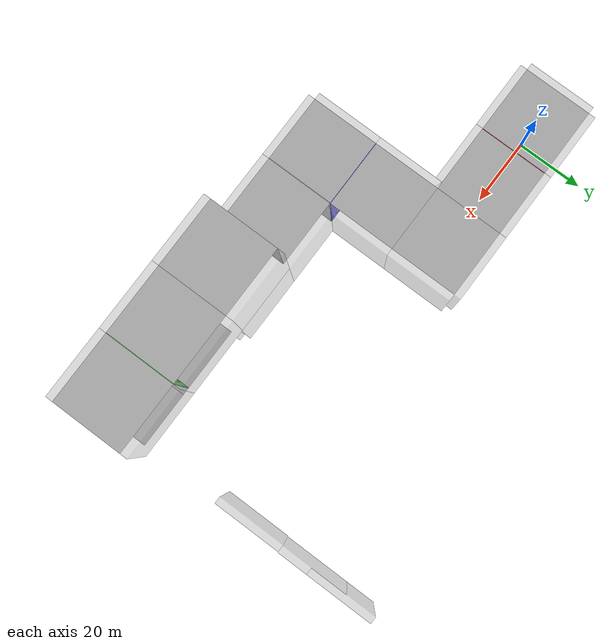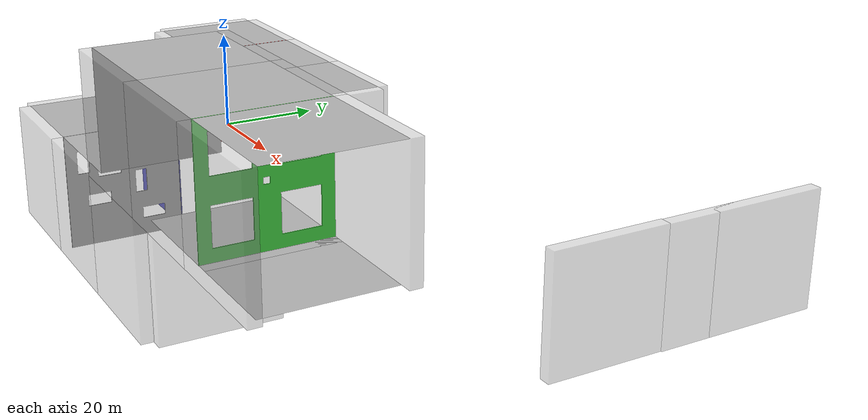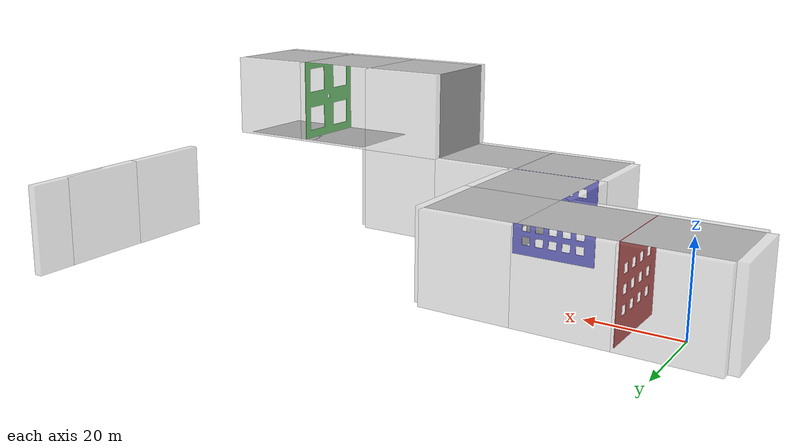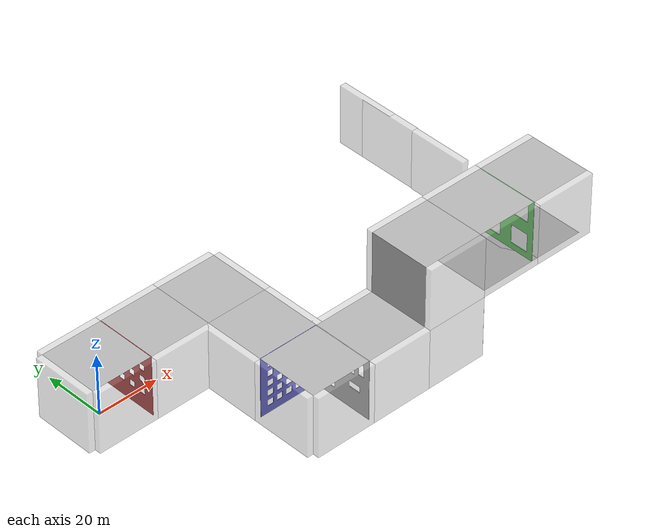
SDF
<sdf version="1.7">
 <model name="race_1_1">
  <link name="link">
   <pose>0 11 10 1.5708 -0 0</pose>
   <visual name="visual">
    <transparency>0.6</transparency>
    <geometry><box><size>20 20 2</size></box></geometry>
    <material>
     <script>
      <uri>model://new_wall/materials/scripts</uri>
      <uri>model://new_wall/materials/textures/</uri>
      <name>NewWall/Image</name>
     </script>
     <shader type="pixel"/>
    </material>
   </visual>
   <collision name="collision">
    <geometry><box><size>20 20 2</size></box></geometry>
    <surface>
     <friction>
      <ode><mu>100</mu><mu2>50</mu2><fdir1>0 0 0</fdir1><slip1>0</slip1><slip2>0</slip2></ode>
      <torsional>
       <coefficient>1</coefficient>
       <patch_radius>0</patch_radius>
       <surface_radius>0</surface_radius>
       <use_patch_radius>1</use_patch_radius>
       <ode><slip>0</slip></ode>
      </torsional>
     </friction>
     <bounce><restitution_coefficient>0</restitution_coefficient><threshold>1e+06</threshold></bounce>
     <contact>
      <collide_without_contact>0</collide_without_contact>
      <collide_without_contact_bitmask>1</collide_without_contact_bitmask>
      <collide_bitmask>1</collide_bitmask>
      <ode>
       <soft_cfm>0</soft_cfm>
       <soft_erp>0.2</soft_erp>
       <kp>1e+13</kp>
       <kd>1</kd>
       <max_vel>0.01</max_vel>
       <min_depth>0</min_depth>
      </ode>
      <bullet>
       <split_impulse>1</split_impulse>
       <split_impulse_penetration_threshold>-0.01</split_impulse_penetration_threshold>
       <soft_cfm>0</soft_cfm>
       <soft_erp>0.2</soft_erp>
       <kp>1e+13</kp>
       <kd>1</kd>
      </bullet>
     </contact>
    </surface>
   </collision>
  </link>
  <link name="link_clone">
   <pose>0 -11 10 1.5708 -0 0</pose>
   <visual name="visual">
    <transparency>0.6</transparency>
    <geometry><box><size>20 20 2</size></box></geometry>
    <material>
     <script>
      <uri>model://new_wall/materials/scripts</uri>
      <uri>model://new_wall/materials/textures/</uri>
      <name>NewWall/Image</name>
     </script>
     <shader type="pixel"/>
    </material>
   </visual>
   <collision name="collision">
    <geometry><box><size>20 20 2</size></box></geometry>
    <surface>
     <friction>
      <ode><mu>1</mu><mu2>1</mu2><fdir1>0 0 0</fdir1><slip1>0</slip1><slip2>0</slip2></ode>
      <torsional>
       <coefficient>1</coefficient>
       <patch_radius>0</patch_radius>
       <surface_radius>0</surface_radius>
       <use_patch_radius>1</use_patch_radius>
       <ode><slip>0</slip></ode>
      </torsional>
     </friction>
     <bounce><restitution_coefficient>0</restitution_coefficient><threshold>1e+06</threshold></bounce>
     <contact>
      <collide_without_contact>0</collide_without_contact>
      <collide_without_contact_bitmask>1</collide_without_contact_bitmask>
      <collide_bitmask>1</collide_bitmask>
      <ode>
       <soft_cfm>0</soft_cfm>
       <soft_erp>0.2</soft_erp>
       <kp>1e+13</kp>
       <kd>1</kd>
       <max_vel>0.01</max_vel>
       <min_depth>0</min_depth>
      </ode>
      <bullet>
       <split_impulse>1</split_impulse>
       <split_impulse_penetration_threshold>-0.01</split_impulse_penetration_threshold>
       <soft_cfm>0</soft_cfm>
       <soft_erp>0.2</soft_erp>
       <kp>1e+13</kp>
       <kd>1</kd>
      </bullet>
     </contact>
    </surface>
   </collision>
  </link>
  <link name="link_clone_0">
   <pose>20 11 10 1.5708 -0 0</pose>
   <visual name="visual">
    <transparency>0.6</transparency>
    <geometry><box><size>20 20 2</size></box></geometry>
    <material>
     <script>
      <uri>model://new_wall/materials/scripts</uri>
      <uri>model://new_wall/materials/textures/</uri>
      <name>NewWall/Image</name>
     </script>
     <shader type="pixel"/>
    </material>
   </visual>
   <collision name="collision">
    <geometry><box><size>20 20 2</size></box></geometry>
    <surface>
     <friction>
      <ode><mu>1</mu><mu2>1</mu2><fdir1>0 0 0</fdir1><slip1>0</slip1><slip2>0</slip2></ode>
      <torsional>
       <coefficient>1</coefficient>
       <patch_radius>0</patch_radius>
       <surface_radius>0</surface_radius>
       <use_patch_radius>1</use_patch_radius>
       <ode><slip>0</slip></ode>
      </torsional>
     </friction>
     <bounce><restitution_coefficient>0</restitution_coefficient><threshold>1e+06</threshold></bounce>
     <contact>
      <collide_without_contact>0</collide_without_contact>
      <collide_without_contact_bitmask>1</collide_without_contact_bitmask>
      <collide_bitmask>1</collide_bitmask>
      <ode>
       <soft_cfm>0</soft_cfm>
       <soft_erp>0.2</soft_erp>
       <kp>1e+13</kp>
       <kd>1</kd>
       <max_vel>0.01</max_vel>
       <min_depth>0</min_depth>
      </ode>
      <bullet>
       <split_impulse>1</split_impulse>
       <split_impulse_penetration_threshold>-0.01</split_impulse_penetration_threshold>
       <soft_cfm>0</soft_cfm>
       <soft_erp>0.2</soft_erp>
       <kp>1e+13</kp>
       <kd>1</kd>
      </bullet>
     </contact>
    </surface>
   </collision>
  </link>
  <link name="link_clone_1">
   <pose>20 -11 10 1.5708 -0 0</pose>
   <visual name="visual">
    <transparency>0.6</transparency>
    <geometry><box><size>20 20 2</size></box></geometry>
    <material>
     <script>
      <uri>model://new_wall/materials/scripts</uri>
      <uri>model://new_wall/materials/textures/</uri>
      <name>NewWall/Image</name>
     </script>
     <shader type="pixel"/>
    </material>
   </visual>
   <collision name="collision">
    <geometry><box><size>20 20 2</size></box></geometry>
    <surface>
     <friction>
      <ode><mu>1</mu><mu2>1</mu2><fdir1>0 0 0</fdir1><slip1>0</slip1><slip2>0</slip2></ode>
      <torsional>
       <coefficient>1</coefficient>
       <patch_radius>0</patch_radius>
       <surface_radius>0</surface_radius>
       <use_patch_radius>1</use_patch_radius>
       <ode><slip>0</slip></ode>
      </torsional>
     </friction>
     <bounce><restitution_coefficient>0</restitution_coefficient><threshold>1e+06</threshold></bounce>
     <contact>
      <collide_without_contact>0</collide_without_contact>
      <collide_without_contact_bitmask>1</collide_without_contact_bitmask>
      <collide_bitmask>1</collide_bitmask>
      <ode>
       <soft_cfm>0</soft_cfm>
       <soft_erp>0.2</soft_erp>
       <kp>1e+13</kp>
       <kd>1</kd>
       <max_vel>0.01</max_vel>
       <min_depth>0</min_depth>
      </ode>
      <bullet>
       <split_impulse>1</split_impulse>
       <split_impulse_penetration_threshold>-0.01</split_impulse_penetration_threshold>
       <soft_cfm>0</soft_cfm>
       <soft_erp>0.2</soft_erp>
       <kp>1e+13</kp>
       <kd>1</kd>
      </bullet>
     </contact>
    </surface>
   </collision>
  </link>
  <link name="link_clone_10">
   <pose>100 -51 30 1.5708 -0 0</pose>
   <visual name="visual">
    <transparency>0.6</transparency>
    <geometry><box><size>20 20 2</size></box></geometry>
    <material>
     <script>
      <uri>model://new_wall/materials/scripts</uri>
      <uri>model://new_wall/materials/textures/</uri>
      <name>NewWall/Image</name>
     </script>
     <shader type="pixel"/>
    </material>
   </visual>
   <collision name="collision">
    <geometry><box><size>20 20 2</size></box></geometry>
    <surface>
     <friction>
      <ode><mu>1</mu><mu2>1</mu2><fdir1>0 0 0</fdir1><slip1>0</slip1><slip2>0</slip2></ode>
      <torsional>
       <coefficient>1</coefficient>
       <patch_radius>0</patch_radius>
       <surface_radius>0</surface_radius>
       <use_patch_radius>1</use_patch_radius>
       <ode><slip>0</slip></ode>
      </torsional>
     </friction>
     <bounce><restitution_coefficient>0</restitution_coefficient><threshold>1e+06</threshold></bounce>
     <contact>
      <collide_without_contact>0</collide_without_contact>
      <collide_without_contact_bitmask>1</collide_without_contact_bitmask>
      <collide_bitmask>1</collide_bitmask>
      <ode>
       <soft_cfm>0</soft_cfm>
       <soft_erp>0.2</soft_erp>
       <kp>1e+13</kp>
       <kd>1</kd>
       <max_vel>0.01</max_vel>
       <min_depth>0</min_depth>
      </ode>
      <bullet>
       <split_impulse>1</split_impulse>
       <split_impulse_penetration_threshold>-0.01</split_impulse_penetration_threshold>
       <soft_cfm>0</soft_cfm>
       <soft_erp>0.2</soft_erp>
       <kp>1e+13</kp>
       <kd>1</kd>
      </bullet>
     </contact>
    </surface>
   </collision>
  </link>
  <link name="link_clone_10_clone">
   <pose>120 -51 30 1.5708 -0 0</pose>
   <visual name="visual">
    <transparency>0.6</transparency>
    <geometry><box><size>20 20 2</size></box></geometry>
    <material>
     <script>
      <uri>model://new_wall/materials/scripts</uri>
      <uri>model://new_wall/materials/textures/</uri>
      <name>NewWall/Image</name>
     </script>
     <shader type="pixel"/>
    </material>
   </visual>
   <collision name="collision">
    <geometry><box><size>20 20 2</size></box></geometry>
    <surface>
     <friction>
      <ode><mu>1</mu><mu2>1</mu2><fdir1>0 0 0</fdir1><slip1>0</slip1><slip2>0</slip2></ode>
      <torsional>
       <coefficient>1</coefficient>
       <patch_radius>0</patch_radius>
       <surface_radius>0</surface_radius>
       <use_patch_radius>1</use_patch_radius>
       <ode><slip>0</slip></ode>
      </torsional>
     </friction>
     <bounce><restitution_coefficient>0</restitution_coefficient><threshold>1e+06</threshold></bounce>
     <contact>
      <collide_without_contact>0</collide_without_contact>
      <collide_without_contact_bitmask>1</collide_without_contact_bitmask>
      <collide_bitmask>1</collide_bitmask>
      <ode>
       <soft_cfm>0</soft_cfm>
       <soft_erp>0.2</soft_erp>
       <kp>1e+13</kp>
       <kd>1</kd>
       <max_vel>0.01</max_vel>
       <min_depth>0</min_depth>
      </ode>
      <bullet>
       <split_impulse>1</split_impulse>
       <split_impulse_penetration_threshold>-0.01</split_impulse_penetration_threshold>
       <soft_cfm>0</soft_cfm>
       <soft_erp>0.2</soft_erp>
       <kp>1e+13</kp>
       <kd>1</kd>
      </bullet>
     </contact>
    </surface>
   </collision>
  </link>
  <link name="link_clone_10_clone_0">
   <pose>100 -29 30 1.5708 -0 0</pose>
   <visual name="visual">
    <transparency>0.6</transparency>
    <geometry><box><size>20 20 2</size></box></geometry>
    <material>
     <script>
      <uri>model://new_wall/materials/scripts</uri>
      <uri>model://new_wall/materials/textures/</uri>
      <name>NewWall/Image</name>
     </script>
     <shader type="pixel"/>
    </material>
   </visual>
   <collision name="collision">
    <geometry><box><size>20 20 2</size></box></geometry>
    <surface>
     <friction>
      <ode><mu>1</mu><mu2>1</mu2><fdir1>0 0 0</fdir1><slip1>0</slip1><slip2>0</slip2></ode>
      <torsional>
       <coefficient>1</coefficient>
       <patch_radius>0</patch_radius>
       <surface_radius>0</surface_radius>
       <use_patch_radius>1</use_patch_radius>
       <ode><slip>0</slip></ode>
      </torsional>
     </friction>
     <bounce><restitution_coefficient>0</restitution_coefficient><threshold>1e+06</threshold></bounce>
     <contact>
      <collide_without_contact>0</collide_without_contact>
      <collide_without_contact_bitmask>1</collide_without_contact_bitmask>
      <collide_bitmask>1</collide_bitmask>
      <ode>
       <soft_cfm>0</soft_cfm>
       <soft_erp>0.2</soft_erp>
       <kp>1e+13</kp>
       <kd>1</kd>
       <max_vel>0.01</max_vel>
       <min_depth>0</min_depth>
      </ode>
      <bullet>
       <split_impulse>1</split_impulse>
       <split_impulse_penetration_threshold>-0.01</split_impulse_penetration_threshold>
       <soft_cfm>0</soft_cfm>
       <soft_erp>0.2</soft_erp>
       <kp>1e+13</kp>
       <kd>1</kd>
      </bullet>
     </contact>
    </surface>
   </collision>
  </link>
  <link name="link_clone_10_clone_1">
   <pose>120 -29 30 1.5708 -0 0</pose>
   <visual name="visual">
    <transparency>0.6</transparency>
    <geometry><box><size>20 20 2</size></box></geometry>
    <material>
     <script>
      <uri>model://new_wall/materials/scripts</uri>
      <uri>model://new_wall/materials/textures/</uri>
      <name>NewWall/Image</name>
     </script>
     <shader type="pixel"/>
    </material>
   </visual>
   <collision name="collision">
    <geometry><box><size>20 20 2</size></box></geometry>
    <surface>
     <friction>
      <ode><mu>1</mu><mu2>1</mu2><fdir1>0 0 0</fdir1><slip1>0</slip1><slip2>0</slip2></ode>
      <torsional>
       <coefficient>1</coefficient>
       <patch_radius>0</patch_radius>
       <surface_radius>0</surface_radius>
       <use_patch_radius>1</use_patch_radius>
       <ode><slip>0</slip></ode>
      </torsional>
     </friction>
     <bounce><restitution_coefficient>0</restitution_coefficient><threshold>1e+06</threshold></bounce>
     <contact>
      <collide_without_contact>0</collide_without_contact>
      <collide_without_contact_bitmask>1</collide_without_contact_bitmask>
      <collide_bitmask>1</collide_bitmask>
      <ode>
       <soft_cfm>0</soft_cfm>
       <soft_erp>0.2</soft_erp>
       <kp>1e+13</kp>
       <kd>1</kd>
       <max_vel>0.01</max_vel>
       <min_depth>0</min_depth>
      </ode>
      <bullet>
       <split_impulse>1</split_impulse>
       <split_impulse_penetration_threshold>-0.01</split_impulse_penetration_threshold>
       <soft_cfm>0</soft_cfm>
       <soft_erp>0.2</soft_erp>
       <kp>1e+13</kp>
       <kd>1</kd>
      </bullet>
     </contact>
    </surface>
   </collision>
  </link>
  <link name="link_clone_10_clone_2">
   <pose>80 -51 30 1.5708 -0 0</pose>
   <visual name="visual">
    <transparency>0.6</transparency>
    <geometry><box><size>20 20 2</size></box></geometry>
    <material>
     <script>
      <uri>model://new_wall/materials/scripts</uri>
      <uri>model://new_wall/materials/textures/</uri>
      <name>NewWall/Image</name>
     </script>
     <shader type="pixel"/>
    </material>
   </visual>
   <collision name="collision">
    <geometry><box><size>20 20 2</size></box></geometry>
    <surface>
     <friction>
      <ode><mu>1</mu><mu2>1</mu2><fdir1>0 0 0</fdir1><slip1>0</slip1><slip2>0</slip2></ode>
      <torsional>
       <coefficient>1</coefficient>
       <patch_radius>0</patch_radius>
       <surface_radius>0</surface_radius>
       <use_patch_radius>1</use_patch_radius>
       <ode><slip>0</slip></ode>
      </torsional>
     </friction>
     <bounce><restitution_coefficient>0</restitution_coefficient><threshold>1e+06</threshold></bounce>
     <contact>
      <collide_without_contact>0</collide_without_contact>
      <collide_without_contact_bitmask>1</collide_without_contact_bitmask>
      <collide_bitmask>1</collide_bitmask>
      <ode>
       <soft_cfm>0</soft_cfm>
       <soft_erp>0.2</soft_erp>
       <kp>1e+13</kp>
       <kd>1</kd>
       <max_vel>0.01</max_vel>
       <min_depth>0</min_depth>
      </ode>
      <bullet>
       <split_impulse>1</split_impulse>
       <split_impulse_penetration_threshold>-0.01</split_impulse_penetration_threshold>
       <soft_cfm>0</soft_cfm>
       <soft_erp>0.2</soft_erp>
       <kp>1e+13</kp>
       <kd>1</kd>
      </bullet>
     </contact>
    </surface>
   </collision>
  </link>
  <link name="link_clone_10_clone_4">
   <pose>80 -29 30 1.5708 -0 0</pose>
   <visual name="visual">
    <transparency>0.6</transparency>
    <geometry><box><size>20 20 2</size></box></geometry>
    <material>
     <script>
      <uri>model://new_wall/materials/scripts</uri>
      <uri>model://new_wall/materials/textures/</uri>
      <name>NewWall/Image</name>
     </script>
     <shader type="pixel"/>
    </material>
   </visual>
   <collision name="collision">
    <geometry><box><size>20 20 2</size></box></geometry>
    <surface>
     <friction>
      <ode><mu>1</mu><mu2>1</mu2><fdir1>0 0 0</fdir1><slip1>0</slip1><slip2>0</slip2></ode>
      <torsional>
       <coefficient>1</coefficient>
       <patch_radius>0</patch_radius>
       <surface_radius>0</surface_radius>
       <use_patch_radius>1</use_patch_radius>
       <ode><slip>0</slip></ode>
      </torsional>
     </friction>
     <bounce><restitution_coefficient>0</restitution_coefficient><threshold>1e+06</threshold></bounce>
     <contact>
      <collide_without_contact>0</collide_without_contact>
      <collide_without_contact_bitmask>1</collide_without_contact_bitmask>
      <collide_bitmask>1</collide_bitmask>
      <ode>
       <soft_cfm>0</soft_cfm>
       <soft_erp>0.2</soft_erp>
       <kp>1e+13</kp>
       <kd>1</kd>
       <max_vel>0.01</max_vel>
       <min_depth>0</min_depth>
      </ode>
      <bullet>
       <split_impulse>1</split_impulse>
       <split_impulse_penetration_threshold>-0.01</split_impulse_penetration_threshold>
       <soft_cfm>0</soft_cfm>
       <soft_erp>0.2</soft_erp>
       <kp>1e+13</kp>
       <kd>1</kd>
      </bullet>
     </contact>
    </surface>
   </collision>
  </link>
  <link name="link_clone_2">
   <pose>40 11 10 1.5708 -0 0</pose>
   <visual name="visual">
    <transparency>0.6</transparency>
    <geometry><box><size>20 20 2</size></box></geometry>
    <material>
     <script>
      <uri>model://new_wall/materials/scripts</uri>
      <uri>model://new_wall/materials/textures/</uri>
      <name>NewWall/Image</name>
     </script>
     <shader type="pixel"/>
    </material>
   </visual>
   <collision name="collision">
    <geometry><box><size>20 20 2</size></box></geometry>
    <surface>
     <friction>
      <ode><mu>1</mu><mu2>1</mu2><fdir1>0 0 0</fdir1><slip1>0</slip1><slip2>0</slip2></ode>
      <torsional>
       <coefficient>1</coefficient>
       <patch_radius>0</patch_radius>
       <surface_radius>0</surface_radius>
       <use_patch_radius>1</use_patch_radius>
       <ode><slip>0</slip></ode>
      </torsional>
     </friction>
     <bounce><restitution_coefficient>0</restitution_coefficient><threshold>1e+06</threshold></bounce>
     <contact>
      <collide_without_contact>0</collide_without_contact>
      <collide_without_contact_bitmask>1</collide_without_contact_bitmask>
      <collide_bitmask>1</collide_bitmask>
      <ode>
       <soft_cfm>0</soft_cfm>
       <soft_erp>0.2</soft_erp>
       <kp>1e+13</kp>
       <kd>1</kd>
       <max_vel>0.01</max_vel>
       <min_depth>0</min_depth>
      </ode>
      <bullet>
       <split_impulse>1</split_impulse>
       <split_impulse_penetration_threshold>-0.01</split_impulse_penetration_threshold>
       <soft_cfm>0</soft_cfm>
       <soft_erp>0.2</soft_erp>
       <kp>1e+13</kp>
       <kd>1</kd>
      </bullet>
     </contact>
    </surface>
   </collision>
  </link>
  <link name="link_clone_3">
   <pose>-11 0 10 1.5708 0 1.5708</pose>
   <visual name="visual">
    <transparency>0.6</transparency>
    <geometry><box><size>20 20 2</size></box></geometry>
    <material>
     <script>
      <uri>model://new_wall/materials/scripts</uri>
      <uri>model://new_wall/materials/textures/</uri>
      <name>NewWall/Image</name>
     </script>
     <shader type="pixel"/>
    </material>
   </visual>
   <collision name="collision">
    <geometry><box><size>20 20 2</size></box></geometry>
    <surface>
     <friction>
      <ode><mu>1</mu><mu2>1</mu2><fdir1>0 0 0</fdir1><slip1>0</slip1><slip2>0</slip2></ode>
      <torsional>
       <coefficient>1</coefficient>
       <patch_radius>0</patch_radius>
       <surface_radius>0</surface_radius>
       <use_patch_radius>1</use_patch_radius>
       <ode><slip>0</slip></ode>
      </torsional>
     </friction>
     <bounce><restitution_coefficient>0</restitution_coefficient><threshold>1e+06</threshold></bounce>
     <contact>
      <collide_without_contact>0</collide_without_contact>
      <collide_without_contact_bitmask>1</collide_without_contact_bitmask>
      <collide_bitmask>1</collide_bitmask>
      <ode>
       <soft_cfm>0</soft_cfm>
       <soft_erp>0.2</soft_erp>
       <kp>1e+13</kp>
       <kd>1</kd>
       <max_vel>0.01</max_vel>
       <min_depth>0</min_depth>
      </ode>
      <bullet>
       <split_impulse>1</split_impulse>
       <split_impulse_penetration_threshold>-0.01</split_impulse_penetration_threshold>
       <soft_cfm>0</soft_cfm>
       <soft_erp>0.2</soft_erp>
       <kp>1e+13</kp>
       <kd>1</kd>
      </bullet>
     </contact>
    </surface>
   </collision>
  </link>
  <link name="link_clone_3_clone">
   <pose>51 0 10 1.5708 0 1.5708</pose>
   <visual name="visual">
    <transparency>0.6</transparency>
    <geometry><box><size>20 20 2</size></box></geometry>
    <material>
     <script>
      <uri>model://new_wall/materials/scripts</uri>
      <uri>model://new_wall/materials/textures/</uri>
      <name>NewWall/Image</name>
     </script>
     <shader type="pixel"/>
    </material>
   </visual>
   <collision name="collision">
    <geometry><box><size>20 20 2</size></box></geometry>
    <surface>
     <friction>
      <ode><mu>1</mu><mu2>1</mu2><fdir1>0 0 0</fdir1><slip1>0</slip1><slip2>0</slip2></ode>
      <torsional>
       <coefficient>1</coefficient>
       <patch_radius>0</patch_radius>
       <surface_radius>0</surface_radius>
       <use_patch_radius>1</use_patch_radius>
       <ode><slip>0</slip></ode>
      </torsional>
     </friction>
     <bounce><restitution_coefficient>0</restitution_coefficient><threshold>1e+06</threshold></bounce>
     <contact>
      <collide_without_contact>0</collide_without_contact>
      <collide_without_contact_bitmask>1</collide_without_contact_bitmask>
      <collide_bitmask>1</collide_bitmask>
      <ode>
       <soft_cfm>0</soft_cfm>
       <soft_erp>0.2</soft_erp>
       <kp>1e+13</kp>
       <kd>1</kd>
       <max_vel>0.01</max_vel>
       <min_depth>0</min_depth>
      </ode>
      <bullet>
       <split_impulse>1</split_impulse>
       <split_impulse_penetration_threshold>-0.01</split_impulse_penetration_threshold>
       <soft_cfm>0</soft_cfm>
       <soft_erp>0.2</soft_erp>
       <kp>1e+13</kp>
       <kd>1</kd>
      </bullet>
     </contact>
    </surface>
   </collision>
  </link>
  <link name="link_clone_3_clone_0">
   <pose>51 -20 10 1.5708 0 1.5708</pose>
   <visual name="visual">
    <transparency>0.6</transparency>
    <geometry><box><size>20 20 2</size></box></geometry>
    <material>
     <script>
      <uri>model://new_wall/materials/scripts</uri>
      <uri>model://new_wall/materials/textures/</uri>
      <name>NewWall/Image</name>
     </script>
     <shader type="pixel"/>
    </material>
   </visual>
   <collision name="collision">
    <geometry><box><size>20 20 2</size></box></geometry>
    <surface>
     <friction>
      <ode><mu>1</mu><mu2>1</mu2><fdir1>0 0 0</fdir1><slip1>0</slip1><slip2>0</slip2></ode>
      <torsional>
       <coefficient>1</coefficient>
       <patch_radius>0</patch_radius>
       <surface_radius>0</surface_radius>
       <use_patch_radius>1</use_patch_radius>
       <ode><slip>0</slip></ode>
      </torsional>
     </friction>
     <bounce><restitution_coefficient>0</restitution_coefficient><threshold>1e+06</threshold></bounce>
     <contact>
      <collide_without_contact>0</collide_without_contact>
      <collide_without_contact_bitmask>1</collide_without_contact_bitmask>
      <collide_bitmask>1</collide_bitmask>
      <ode>
       <soft_cfm>0</soft_cfm>
       <soft_erp>0.2</soft_erp>
       <kp>1e+13</kp>
       <kd>1</kd>
       <max_vel>0.01</max_vel>
       <min_depth>0</min_depth>
      </ode>
      <bullet>
       <split_impulse>1</split_impulse>
       <split_impulse_penetration_threshold>-0.01</split_impulse_penetration_threshold>
       <soft_cfm>0</soft_cfm>
       <soft_erp>0.2</soft_erp>
       <kp>1e+13</kp>
       <kd>1</kd>
      </bullet>
     </contact>
    </surface>
   </collision>
  </link>
  <link name="link_clone_3_clone_1">
   <pose>29 -20 10 1.5708 0 1.5708</pose>
   <visual name="visual">
    <transparency>0.6</transparency>
    <geometry><box><size>20 20 2</size></box></geometry>
    <material>
     <script>
      <uri>model://new_wall/materials/scripts</uri>
      <uri>model://new_wall/materials/textures/</uri>
      <name>NewWall/Image</name>
     </script>
     <shader type="pixel"/>
    </material>
   </visual>
   <collision name="collision">
    <geometry><box><size>20 20 2</size></box></geometry>
    <surface>
     <friction>
      <ode><mu>1</mu><mu2>1</mu2><fdir1>0 0 0</fdir1><slip1>0</slip1><slip2>0</slip2></ode>
      <torsional>
       <coefficient>1</coefficient>
       <patch_radius>0</patch_radius>
       <surface_radius>0</surface_radius>
       <use_patch_radius>1</use_patch_radius>
       <ode><slip>0</slip></ode>
      </torsional>
     </friction>
     <bounce><restitution_coefficient>0</restitution_coefficient><threshold>1e+06</threshold></bounce>
     <contact>
      <collide_without_contact>0</collide_without_contact>
      <collide_without_contact_bitmask>1</collide_without_contact_bitmask>
      <collide_bitmask>1</collide_bitmask>
      <ode>
       <soft_cfm>0</soft_cfm>
       <soft_erp>0.2</soft_erp>
       <kp>1e+13</kp>
       <kd>1</kd>
       <max_vel>0.01</max_vel>
       <min_depth>0</min_depth>
      </ode>
      <bullet>
       <split_impulse>1</split_impulse>
       <split_impulse_penetration_threshold>-0.01</split_impulse_penetration_threshold>
       <soft_cfm>0</soft_cfm>
       <soft_erp>0.2</soft_erp>
       <kp>1e+13</kp>
       <kd>1</kd>
      </bullet>
     </contact>
    </surface>
   </collision>
  </link>
  <link name="link_clone_3_clone_10">
   <pose>128 32 10 1.5708 0 1.5708</pose>
   <visual name="visual">
    <transparency>0.6</transparency>
    <geometry><box><size>20 20 2</size></box></geometry>
    <material>
     <script>
      <uri>model://new_wall/materials/scripts</uri>
      <uri>model://new_wall/materials/textures/</uri>
      <name>NewWall/Image</name>
     </script>
     <shader type="pixel"/>
    </material>
   </visual>
   <collision name="collision">
    <geometry><box><size>20 20 2</size></box></geometry>
    <surface>
     <friction>
      <ode><mu>1</mu><mu2>1</mu2><fdir1>0 0 0</fdir1><slip1>0</slip1><slip2>0</slip2></ode>
      <torsional>
       <coefficient>1</coefficient>
       <patch_radius>0</patch_radius>
       <surface_radius>0</surface_radius>
       <use_patch_radius>1</use_patch_radius>
       <ode><slip>0</slip></ode>
      </torsional>
     </friction>
     <bounce><restitution_coefficient>0</restitution_coefficient><threshold>1e+06</threshold></bounce>
     <contact>
      <collide_without_contact>0</collide_without_contact>
      <collide_without_contact_bitmask>1</collide_without_contact_bitmask>
      <collide_bitmask>1</collide_bitmask>
      <ode>
       <soft_cfm>0</soft_cfm>
       <soft_erp>0.2</soft_erp>
       <kp>1e+13</kp>
       <kd>1</kd>
       <max_vel>0.01</max_vel>
       <min_depth>0</min_depth>
      </ode>
      <bullet>
       <split_impulse>1</split_impulse>
       <split_impulse_penetration_threshold>-0.01</split_impulse_penetration_threshold>
       <soft_cfm>0</soft_cfm>
       <soft_erp>0.2</soft_erp>
       <kp>1e+13</kp>
       <kd>1</kd>
      </bullet>
     </contact>
    </surface>
   </collision>
  </link>
  <link name="link_clone_3_clone_12">
   <pose>128 23 10 1.5708 0 1.5708</pose>
   <visual name="visual">
    <transparency>0.6</transparency>
    <geometry><box><size>20 20 2</size></box></geometry>
    <material>
     <script>
      <uri>model://new_wall/materials/scripts</uri>
      <uri>model://new_wall/materials/textures/</uri>
      <name>NewWall/Image</name>
     </script>
     <shader type="pixel"/>
    </material>
   </visual>
   <collision name="collision">
    <geometry><box><size>20 20 2</size></box></geometry>
    <surface>
     <friction>
      <ode><mu>1</mu><mu2>1</mu2><fdir1>0 0 0</fdir1><slip1>0</slip1><slip2>0</slip2></ode>
      <torsional>
       <coefficient>1</coefficient>
       <patch_radius>0</patch_radius>
       <surface_radius>0</surface_radius>
       <use_patch_radius>1</use_patch_radius>
       <ode><slip>0</slip></ode>
      </torsional>
     </friction>
     <bounce><restitution_coefficient>0</restitution_coefficient><threshold>1e+06</threshold></bounce>
     <contact>
      <collide_without_contact>0</collide_without_contact>
      <collide_without_contact_bitmask>1</collide_without_contact_bitmask>
      <collide_bitmask>1</collide_bitmask>
      <ode>
       <soft_cfm>0</soft_cfm>
       <soft_erp>0.2</soft_erp>
       <kp>1e+13</kp>
       <kd>1</kd>
       <max_vel>0.01</max_vel>
       <min_depth>0</min_depth>
      </ode>
      <bullet>
       <split_impulse>1</split_impulse>
       <split_impulse_penetration_threshold>-0.01</split_impulse_penetration_threshold>
       <soft_cfm>0</soft_cfm>
       <soft_erp>0.2</soft_erp>
       <kp>1e+13</kp>
       <kd>1</kd>
      </bullet>
     </contact>
    </surface>
   </collision>
  </link>
  <link name="link_clone_3_clone_14">
   <pose>127.818 3 10 1.5708 0 1.5708</pose>
   <visual name="visual">
    <transparency>0.6</transparency>
    <geometry><box><size>20 20 2</size></box></geometry>
    <material>
     <script>
      <uri>model://new_wall/materials/scripts</uri>
      <uri>model://new_wall/materials/textures/</uri>
      <name>NewWall/Image</name>
     </script>
     <shader type="pixel"/>
    </material>
   </visual>
   <collision name="collision">
    <geometry><box><size>20 20 2</size></box></geometry>
    <surface>
     <friction>
      <ode><mu>1</mu><mu2>1</mu2><fdir1>0 0 0</fdir1><slip1>0</slip1><slip2>0</slip2></ode>
      <torsional>
       <coefficient>1</coefficient>
       <patch_radius>0</patch_radius>
       <surface_radius>0</surface_radius>
       <use_patch_radius>1</use_patch_radius>
       <ode><slip>0</slip></ode>
      </torsional>
     </friction>
     <bounce><restitution_coefficient>0</restitution_coefficient><threshold>1e+06</threshold></bounce>
     <contact>
      <collide_without_contact>0</collide_without_contact>
      <collide_without_contact_bitmask>1</collide_without_contact_bitmask>
      <collide_bitmask>1</collide_bitmask>
      <ode>
       <soft_cfm>0</soft_cfm>
       <soft_erp>0.2</soft_erp>
       <kp>1e+13</kp>
       <kd>1</kd>
       <max_vel>0.01</max_vel>
       <min_depth>0</min_depth>
      </ode>
      <bullet>
       <split_impulse>1</split_impulse>
       <split_impulse_penetration_threshold>-0.01</split_impulse_penetration_threshold>
       <soft_cfm>0</soft_cfm>
       <soft_erp>0.2</soft_erp>
       <kp>1e+13</kp>
       <kd>1</kd>
      </bullet>
     </contact>
    </surface>
   </collision>
  </link>
  <link name="link_clone_3_clone_17">
   <pose>91.1498 -39.9893 10 1.5708 0 1.5708</pose>
   <visual name="visual">
    <transparency>0.6</transparency>
    <geometry><box><size>20 20 2</size></box></geometry>
    <material>
     <script>
      <uri>model://new_wall/materials/scripts</uri>
      <uri>model://new_wall/materials/textures/</uri>
      <name>NewWall/Image</name>
     </script>
     <shader type="pixel"/>
    </material>
   </visual>
   <collision name="collision">
    <geometry><box><size>20 20 2</size></box></geometry>
    <surface>
     <friction>
      <ode><mu>1</mu><mu2>1</mu2><fdir1>0 0 0</fdir1><slip1>0</slip1><slip2>0</slip2></ode>
      <torsional>
       <coefficient>1</coefficient>
       <patch_radius>0</patch_radius>
       <surface_radius>0</surface_radius>
       <use_patch_radius>1</use_patch_radius>
       <ode><slip>0</slip></ode>
      </torsional>
     </friction>
     <bounce><restitution_coefficient>0</restitution_coefficient><threshold>1e+06</threshold></bounce>
     <contact>
      <collide_without_contact>0</collide_without_contact>
      <collide_without_contact_bitmask>1</collide_without_contact_bitmask>
      <collide_bitmask>1</collide_bitmask>
      <ode>
       <soft_cfm>0</soft_cfm>
       <soft_erp>0.2</soft_erp>
       <kp>1e+13</kp>
       <kd>1</kd>
       <max_vel>0.01</max_vel>
       <min_depth>0</min_depth>
      </ode>
      <bullet>
       <split_impulse>1</split_impulse>
       <split_impulse_penetration_threshold>-0.01</split_impulse_penetration_threshold>
       <soft_cfm>0</soft_cfm>
       <soft_erp>0.2</soft_erp>
       <kp>1e+13</kp>
       <kd>1</kd>
      </bullet>
     </contact>
    </surface>
   </collision>
  </link>
  <link name="link_clone_3_clone_2">
   <pose>29 -40 10 1.5708 0 1.5708</pose>
   <visual name="visual">
    <transparency>0.6</transparency>
    <geometry><box><size>20 20 2</size></box></geometry>
    <material>
     <script>
      <uri>model://new_wall/materials/scripts</uri>
      <uri>model://new_wall/materials/textures/</uri>
      <name>NewWall/Image</name>
     </script>
     <shader type="pixel"/>
    </material>
   </visual>
   <collision name="collision">
    <geometry><box><size>20 20 2</size></box></geometry>
    <surface>
     <friction>
      <ode><mu>1</mu><mu2>1</mu2><fdir1>0 0 0</fdir1><slip1>0</slip1><slip2>0</slip2></ode>
      <torsional>
       <coefficient>1</coefficient>
       <patch_radius>0</patch_radius>
       <surface_radius>0</surface_radius>
       <use_patch_radius>1</use_patch_radius>
       <ode><slip>0</slip></ode>
      </torsional>
     </friction>
     <bounce><restitution_coefficient>0</restitution_coefficient><threshold>1e+06</threshold></bounce>
     <contact>
      <collide_without_contact>0</collide_without_contact>
      <collide_without_contact_bitmask>1</collide_without_contact_bitmask>
      <collide_bitmask>1</collide_bitmask>
      <ode>
       <soft_cfm>0</soft_cfm>
       <soft_erp>0.2</soft_erp>
       <kp>1e+13</kp>
       <kd>1</kd>
       <max_vel>0.01</max_vel>
       <min_depth>0</min_depth>
      </ode>
      <bullet>
       <split_impulse>1</split_impulse>
       <split_impulse_penetration_threshold>-0.01</split_impulse_penetration_threshold>
       <soft_cfm>0</soft_cfm>
       <soft_erp>0.2</soft_erp>
       <kp>1e+13</kp>
       <kd>1</kd>
      </bullet>
     </contact>
    </surface>
   </collision>
  </link>
  <link name="link_clone_4">
   <pose>40 -51 10 1.5708 -0 0</pose>
   <visual name="visual">
    <transparency>0.6</transparency>
    <geometry><box><size>20 20 2</size></box></geometry>
    <material>
     <script>
      <uri>model://new_wall/materials/scripts</uri>
      <uri>model://new_wall/materials/textures/</uri>
      <name>NewWall/Image</name>
     </script>
     <shader type="pixel"/>
    </material>
   </visual>
   <collision name="collision">
    <geometry><box><size>20 20 2</size></box></geometry>
    <surface>
     <friction>
      <ode><mu>1</mu><mu2>1</mu2><fdir1>0 0 0</fdir1><slip1>0</slip1><slip2>0</slip2></ode>
      <torsional>
       <coefficient>1</coefficient>
       <patch_radius>0</patch_radius>
       <surface_radius>0</surface_radius>
       <use_patch_radius>1</use_patch_radius>
       <ode><slip>0</slip></ode>
      </torsional>
     </friction>
     <bounce><restitution_coefficient>0</restitution_coefficient><threshold>1e+06</threshold></bounce>
     <contact>
      <collide_without_contact>0</collide_without_contact>
      <collide_without_contact_bitmask>1</collide_without_contact_bitmask>
      <collide_bitmask>1</collide_bitmask>
      <ode>
       <soft_cfm>0</soft_cfm>
       <soft_erp>0.2</soft_erp>
       <kp>1e+13</kp>
       <kd>1</kd>
       <max_vel>0.01</max_vel>
       <min_depth>0</min_depth>
      </ode>
      <bullet>
       <split_impulse>1</split_impulse>
       <split_impulse_penetration_threshold>-0.01</split_impulse_penetration_threshold>
       <soft_cfm>0</soft_cfm>
       <soft_erp>0.2</soft_erp>
       <kp>1e+13</kp>
       <kd>1</kd>
      </bullet>
     </contact>
    </surface>
   </collision>
  </link>
  <link name="link_clone_5">
   <pose>60 -29 10 1.5708 -0 0</pose>
   <visual name="visual">
    <transparency>0.6</transparency>
    <geometry><box><size>20 20 2</size></box></geometry>
    <material>
     <script>
      <uri>model://new_wall/materials/scripts</uri>
      <uri>model://new_wall/materials/textures/</uri>
      <name>NewWall/Image</name>
     </script>
     <shader type="pixel"/>
    </material>
   </visual>
   <collision name="collision">
    <geometry><box><size>20 20 2</size></box></geometry>
    <surface>
     <friction>
      <ode><mu>1</mu><mu2>1</mu2><fdir1>0 0 0</fdir1><slip1>0</slip1><slip2>0</slip2></ode>
      <torsional>
       <coefficient>1</coefficient>
       <patch_radius>0</patch_radius>
       <surface_radius>0</surface_radius>
       <use_patch_radius>1</use_patch_radius>
       <ode><slip>0</slip></ode>
      </torsional>
     </friction>
     <bounce><restitution_coefficient>0</restitution_coefficient><threshold>1e+06</threshold></bounce>
     <contact>
      <collide_without_contact>0</collide_without_contact>
      <collide_without_contact_bitmask>1</collide_without_contact_bitmask>
      <collide_bitmask>1</collide_bitmask>
      <ode>
       <soft_cfm>0</soft_cfm>
       <soft_erp>0.2</soft_erp>
       <kp>1e+13</kp>
       <kd>1</kd>
       <max_vel>0.01</max_vel>
       <min_depth>0</min_depth>
      </ode>
      <bullet>
       <split_impulse>1</split_impulse>
       <split_impulse_penetration_threshold>-0.01</split_impulse_penetration_threshold>
       <soft_cfm>0</soft_cfm>
       <soft_erp>0.2</soft_erp>
       <kp>1e+13</kp>
       <kd>1</kd>
      </bullet>
     </contact>
    </surface>
   </collision>
  </link>
  <link name="link_clone_6">
   <pose>60 -51 10 1.5708 -0 0</pose>
   <visual name="visual">
    <transparency>0.6</transparency>
    <geometry><box><size>20 20 2</size></box></geometry>
    <material>
     <script>
      <uri>model://new_wall/materials/scripts</uri>
      <uri>model://new_wall/materials/textures/</uri>
      <name>NewWall/Image</name>
     </script>
     <shader type="pixel"/>
    </material>
   </visual>
   <collision name="collision">
    <geometry><box><size>20 20 2</size></box></geometry>
    <surface>
     <friction>
      <ode><mu>1</mu><mu2>1</mu2><fdir1>0 0 0</fdir1><slip1>0</slip1><slip2>0</slip2></ode>
      <torsional>
       <coefficient>1</coefficient>
       <patch_radius>0</patch_radius>
       <surface_radius>0</surface_radius>
       <use_patch_radius>1</use_patch_radius>
       <ode><slip>0</slip></ode>
      </torsional>
     </friction>
     <bounce><restitution_coefficient>0</restitution_coefficient><threshold>1e+06</threshold></bounce>
     <contact>
      <collide_without_contact>0</collide_without_contact>
      <collide_without_contact_bitmask>1</collide_without_contact_bitmask>
      <collide_bitmask>1</collide_bitmask>
      <ode>
       <soft_cfm>0</soft_cfm>
       <soft_erp>0.2</soft_erp>
       <kp>1e+13</kp>
       <kd>1</kd>
       <max_vel>0.01</max_vel>
       <min_depth>0</min_depth>
      </ode>
      <bullet>
       <split_impulse>1</split_impulse>
       <split_impulse_penetration_threshold>-0.01</split_impulse_penetration_threshold>
       <soft_cfm>0</soft_cfm>
       <soft_erp>0.2</soft_erp>
       <kp>1e+13</kp>
       <kd>1</kd>
      </bullet>
     </contact>
    </surface>
   </collision>
  </link>
  <link name="link_clone_7">
   <pose>80 -51 10 1.5708 -0 0</pose>
   <visual name="visual">
    <transparency>0.6</transparency>
    <geometry><box><size>20 20 2</size></box></geometry>
    <material>
     <script>
      <uri>model://new_wall/materials/scripts</uri>
      <uri>model://new_wall/materials/textures/</uri>
      <name>NewWall/Image</name>
     </script>
     <shader type="pixel"/>
    </material>
   </visual>
   <collision name="collision">
    <geometry><box><size>20 20 2</size></box></geometry>
    <surface>
     <friction>
      <ode><mu>1</mu><mu2>1</mu2><fdir1>0 0 0</fdir1><slip1>0</slip1><slip2>0</slip2></ode>
      <torsional>
       <coefficient>1</coefficient>
       <patch_radius>0</patch_radius>
       <surface_radius>0</surface_radius>
       <use_patch_radius>1</use_patch_radius>
       <ode><slip>0</slip></ode>
      </torsional>
     </friction>
     <bounce><restitution_coefficient>0</restitution_coefficient><threshold>1e+06</threshold></bounce>
     <contact>
      <collide_without_contact>0</collide_without_contact>
      <collide_without_contact_bitmask>1</collide_without_contact_bitmask>
      <collide_bitmask>1</collide_bitmask>
      <ode>
       <soft_cfm>0</soft_cfm>
       <soft_erp>0.2</soft_erp>
       <kp>1e+13</kp>
       <kd>1</kd>
       <max_vel>0.01</max_vel>
       <min_depth>0</min_depth>
      </ode>
      <bullet>
       <split_impulse>1</split_impulse>
       <split_impulse_penetration_threshold>-0.01</split_impulse_penetration_threshold>
       <soft_cfm>0</soft_cfm>
       <soft_erp>0.2</soft_erp>
       <kp>1e+13</kp>
       <kd>1</kd>
      </bullet>
     </contact>
    </surface>
   </collision>
  </link>
  <link name="link_clone_8">
   <pose>80 -29 10 1.5708 -0 0</pose>
   <visual name="visual">
    <transparency>0.6</transparency>
    <geometry><box><size>20 20 2</size></box></geometry>
    <material>
     <script>
      <uri>model://new_wall/materials/scripts</uri>
      <uri>model://new_wall/materials/textures/</uri>
      <name>NewWall/Image</name>
     </script>
     <shader type="pixel"/>
    </material>
   </visual>
   <collision name="collision">
    <geometry><box><size>20 20 2</size></box></geometry>
    <surface>
     <friction>
      <ode><mu>1</mu><mu2>1</mu2><fdir1>0 0 0</fdir1><slip1>0</slip1><slip2>0</slip2></ode>
      <torsional>
       <coefficient>1</coefficient>
       <patch_radius>0</patch_radius>
       <surface_radius>0</surface_radius>
       <use_patch_radius>1</use_patch_radius>
       <ode><slip>0</slip></ode>
      </torsional>
     </friction>
     <bounce><restitution_coefficient>0</restitution_coefficient><threshold>1e+06</threshold></bounce>
     <contact>
      <collide_without_contact>0</collide_without_contact>
      <collide_without_contact_bitmask>1</collide_without_contact_bitmask>
      <collide_bitmask>1</collide_bitmask>
      <ode>
       <soft_cfm>0</soft_cfm>
       <soft_erp>0.2</soft_erp>
       <kp>1e+13</kp>
       <kd>1</kd>
       <max_vel>0.01</max_vel>
       <min_depth>0</min_depth>
      </ode>
      <bullet>
       <split_impulse>1</split_impulse>
       <split_impulse_penetration_threshold>-0.01</split_impulse_penetration_threshold>
       <soft_cfm>0</soft_cfm>
       <soft_erp>0.2</soft_erp>
       <kp>1e+13</kp>
       <kd>1</kd>
      </bullet>
     </contact>
    </surface>
   </collision>
  </link>
  <model name="oneSidedPlane_2">
   <static>1</static>
   <link name="link">
    <collision name="collision"><geometry><box><size>20 20 0.1</size></box></geometry></collision>
    <visual name="visual">
     <cast_shadows>0</cast_shadows>
     <geometry><mesh><scale>1 1 1</scale><uri>model://oneSidedPlane_2/wall1.obj</uri></mesh></geometry>
    </visual>
   </link>
   <pose>0 0 20 0 -0 0</pose>
  </model>
  <model name="oneSidedPlane_2_clone">
   <static>1</static>
   <link name="link">
    <collision name="collision"><geometry><box><size>20 20 0.1</size></box></geometry></collision>
    <visual name="visual">
     <cast_shadows>0</cast_shadows>
     <geometry><mesh><scale>1 1 1</scale><uri>model://oneSidedPlane_2/wall1.obj</uri></mesh></geometry>
    </visual>
   </link>
   <pose>20 0 20 0 -0 0</pose>
  </model>
  <model name="oneSidedPlane_2_clone_0">
   <static>1</static>
   <link name="link">
    <collision name="collision"><geometry><box><size>20 20 0.1</size></box></geometry></collision>
    <visual name="visual">
     <cast_shadows>0</cast_shadows>
     <geometry><mesh><scale>1 1 1</scale><uri>model://oneSidedPlane_2/wall1.obj</uri></mesh></geometry>
    </visual>
   </link>
   <pose>40 0 20 0 -0 0</pose>
  </model>
  <model name="oneSidedPlane_2_clone_1">
   <static>1</static>
   <link name="link">
    <collision name="collision"><geometry><box><size>20 20 0.1</size></box></geometry></collision>
    <visual name="visual">
     <cast_shadows>0</cast_shadows>
     <geometry><mesh><scale>1 1 1</scale><uri>model://oneSidedPlane_2/wall1.obj</uri></mesh></geometry>
    </visual>
   </link>
   <pose>40 -20 20 0 -0 0</pose>
  </model>
  <model name="oneSidedPlane_2_clone_2">
   <static>1</static>
   <link name="link">
    <collision name="collision"><geometry><box><size>20 20 0.1</size></box></geometry></collision>
    <visual name="visual">
     <cast_shadows>0</cast_shadows>
     <geometry><mesh><scale>1 1 1</scale><uri>model://oneSidedPlane_2/wall1.obj</uri></mesh></geometry>
    </visual>
   </link>
   <pose>40 -40 20 0 -0 0</pose>
  </model>
  <model name="oneSidedPlane_2_clone_3">
   <static>1</static>
   <link name="link">
    <collision name="collision"><geometry><box><size>20 20 0.1</size></box></geometry></collision>
    <visual name="visual">
     <cast_shadows>0</cast_shadows>
     <geometry><mesh><scale>1 1 1</scale><uri>model://oneSidedPlane_2/wall1.obj</uri></mesh></geometry>
    </visual>
   </link>
   <pose>60 -40 20 0 -0 0</pose>
  </model>
  <model name="oneSidedPlane_2_clone_4_clone">
   <static>1</static>
   <link name="link">
    <collision name="collision"><geometry><box><size>20 20 0.1</size></box></geometry></collision>
    <visual name="visual">
     <cast_shadows>0</cast_shadows>
     <geometry><mesh><scale>1 1 1</scale><uri>model://oneSidedPlane_2/wall1.obj</uri></mesh></geometry>
    </visual>
   </link>
   <pose>102 -40 20 0 -0 0</pose>
  </model>
  <model name="oneSidedPlane_2_clone_4_clone_0">
   <static>1</static>
   <link name="link">
    <collision name="collision"><geometry><box><size>20 20 0.1</size></box></geometry></collision>
    <visual name="visual">
     <cast_shadows>0</cast_shadows>
     <geometry><mesh><scale>1 1 1</scale><uri>model://oneSidedPlane_2/wall1.obj</uri></mesh></geometry>
    </visual>
   </link>
   <pose>120 -40 40 0 -0 0</pose>
  </model>
  <model name="oneSidedPlane_2_clone_4_clone_0_clone">
   <static>1</static>
   <link name="link">
    <collision name="collision"><geometry><box><size>20 20 0.1</size></box></geometry></collision>
    <visual name="visual">
     <cast_shadows>0</cast_shadows>
     <geometry><mesh><scale>1 1 1</scale><uri>model://oneSidedPlane_2/wall1.obj</uri></mesh></geometry>
    </visual>
   </link>
   <pose>118 -40 20 0 -0 0</pose>
  </model>
  <model name="oneSidedPlane_2_clone_4_clone_0_clone_1">
   <static>1</static>
   <link name="link">
    <collision name="collision"><geometry><box><size>20 20 0.1</size></box></geometry></collision>
    <visual name="visual">
     <cast_shadows>0</cast_shadows>
     <geometry><mesh><scale>1 1 1</scale><uri>model://oneSidedPlane_2/wall1.obj</uri></mesh></geometry>
    </visual>
   </link>
   <pose>100 -40 40 0 -0 0</pose>
  </model>
  <model name="oneSidedPlane_2_clone_4_clone_0_clone_1_clone">
   <static>1</static>
   <link name="link">
    <collision name="collision"><geometry><box><size>20 20 0.1</size></box></geometry></collision>
    <visual name="visual">
     <cast_shadows>0</cast_shadows>
     <geometry><mesh><scale>1 1 1</scale><uri>model://oneSidedPlane_2/wall1.obj</uri></mesh></geometry>
    </visual>
   </link>
   <pose>80 -40 40 0 -0 0</pose>
  </model>
  <model name="oneSidedPlane_2_clone_4_clone_0_clone_1_clone_clone">
   <static>1</static>
   <link name="link">
    <collision name="collision"><geometry><box><size>20 20 0.1</size></box></geometry></collision>
    <visual name="visual">
     <cast_shadows>0</cast_shadows>
     <geometry><mesh><scale>1 1 1</scale><uri>model://oneSidedPlane_2/wall1.obj</uri></mesh></geometry>
    </visual>
   </link>
   <pose>70 -40 30 3.14159 -1.57079 3.14159</pose>
  </model>
  <model name="partition_1">
   <static>1</static>
   <link name="link">
    <pose>-10 0 0 1.57 -0 0</pose>
    <collision name="collision">
     <geometry><mesh><scale>0.001 0.001 0.001</scale><uri>model://partition_1/model.stl</uri></mesh></geometry>
    </collision>
    <visual name="visual">
     <geometry><mesh><scale>0.001 0.001 0.001</scale><uri>model://partition_1/model.stl</uri></mesh></geometry>
     <material>
      <ambient>0.8 0.1 0.1 1</ambient>
      <diffuse>0.8 0.1 0.1 1</diffuse>
      <specular>0.1 0.1 0.1 0</specular>
      <emissive>0.2 0.1 0.1 1</emissive>
     </material>
    </visual>
   </link>
   <pose>10 0 0 0 -0 1.5708</pose>
  </model>
  <model name="partition_10">
   <static>1</static>
   <link name="link">
    <pose>-10 0 0 1.57 -0 0</pose>
    <collision name="collision">
     <geometry><mesh><scale>0.001 0.001 0.001</scale><uri>model://partition_10/model.stl</uri></mesh></geometry>
    </collision>
    <visual name="visual">
     <geometry><mesh><scale>0.001 0.001 0.001</scale><uri>model://partition_10/model.stl</uri></mesh></geometry>
     <material>
      <ambient>0.3 0.9 0.3 1</ambient>
      <diffuse>0.3 0.9 0.3 1</diffuse>
      <specular>0.1 0.1 0.1 0</specular>
      <emissive>0.2 0.3 0.2 1</emissive>
     </material>
    </visual>
   </link>
   <pose>110 -40 20 0 0 -1.5708</pose>
  </model>
  <model name="partition_11">
   <static>1</static>
   <link name="link">
    <pose>-10 0 0 1.57 -0 0</pose>
    <collision name="collision">
     <geometry><mesh><scale>0.001 0.001 0.001</scale><uri>model://partition_11/model.stl</uri></mesh></geometry>
    </collision>
    <visual name="visual">
     <geometry><mesh><scale>0.001 0.001 0.001</scale><uri>model://partition_11/model.stl</uri></mesh></geometry>
     <material>
      <ambient>0.3 0.3 0.9 1</ambient>
      <diffuse>0.3 0.3 0.9 1</diffuse>
      <specular>0.1 0.1 0.1 0</specular>
      <emissive>0.2 0.2 0.3 1</emissive>
     </material>
    </visual>
   </link>
   <pose>40 -30 0 0 0 -3.14159</pose>
  </model>
  <model name="partition_8">
   <static>1</static>
   <link name="link">
    <pose>-10 0 0 1.57 -0 0</pose>
    <collision name="collision">
     <geometry><mesh><scale>0.001 0.001 0.001</scale><uri>model://partition_8/model.stl</uri></mesh></geometry>
    </collision>
    <visual name="visual">
     <geometry><mesh><scale>0.001 0.001 0.001</scale><uri>model://partition_8/model.stl</uri></mesh></geometry>
     <material>
      <ambient>0.8 0.8 0.8 1</ambient>
      <diffuse>0.8 0.8 0.8 1</diffuse>
      <specular>0.1 0.1 0.1 0</specular>
      <emissive>0.2 0.2 0.2 1</emissive>
     </material>
    </visual>
   </link>
   <pose>50 -40 0 0 0 -1.5708</pose>
  </model>
  <static>1</static>
 </model>
</sdf>
